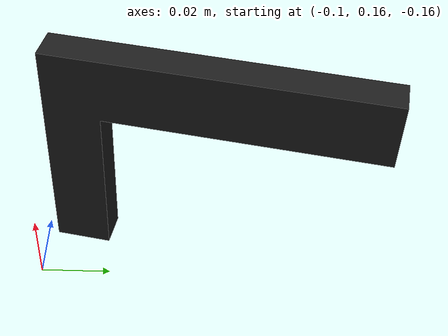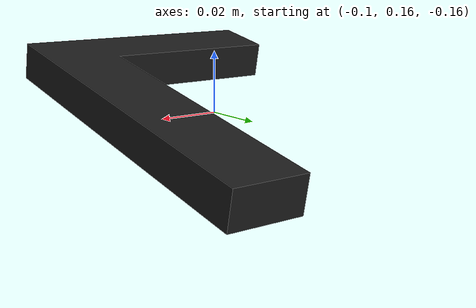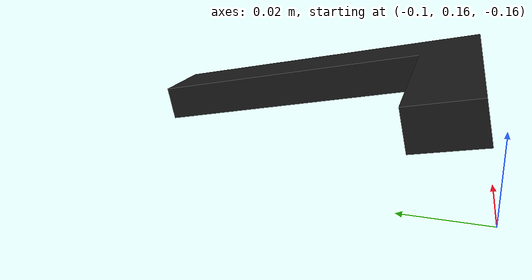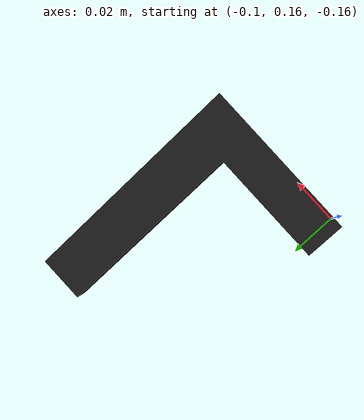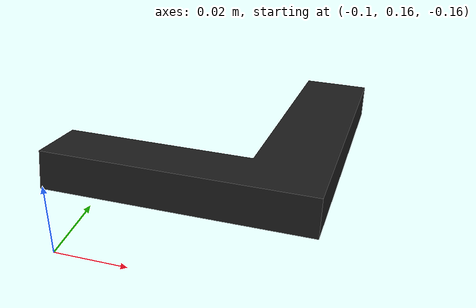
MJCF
<mujoco model="original-5">
  <default>
    <default class="visual">
      <geom group="2" type="mesh" contype="0" conaffinity="0"/>
    </default>
    <default class="collision">
      <geom group="3" type="mesh"/>
    </default>
  </default>
  <asset>
    <material name="material_0_0" specular="0.06666666666666667" shininess="0.03" rgba="0.11372549019607843 0.11372549019607843 0.11372549019607843 1"/>
    <mesh file="original-5.obj"/>
  </asset>
  <worldbody>
    <body name="original-5">
      <geom material="material_0_0" mesh="original-5" class="visual"/>
      <geom mesh="original-5" class="collision"/>
    </body>
  </worldbody>
</mujoco>
